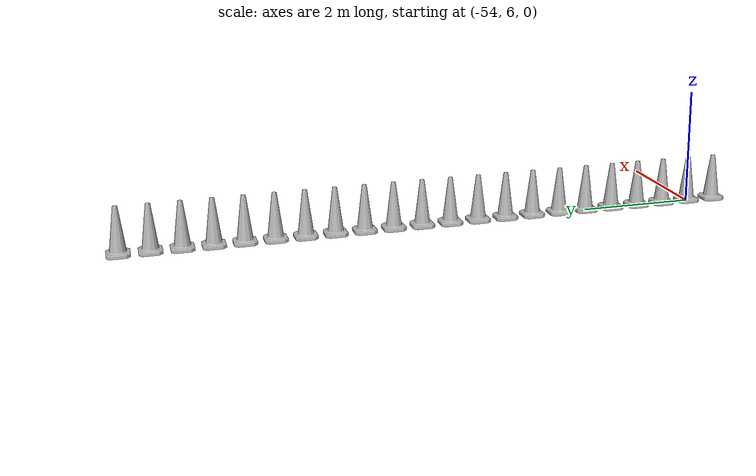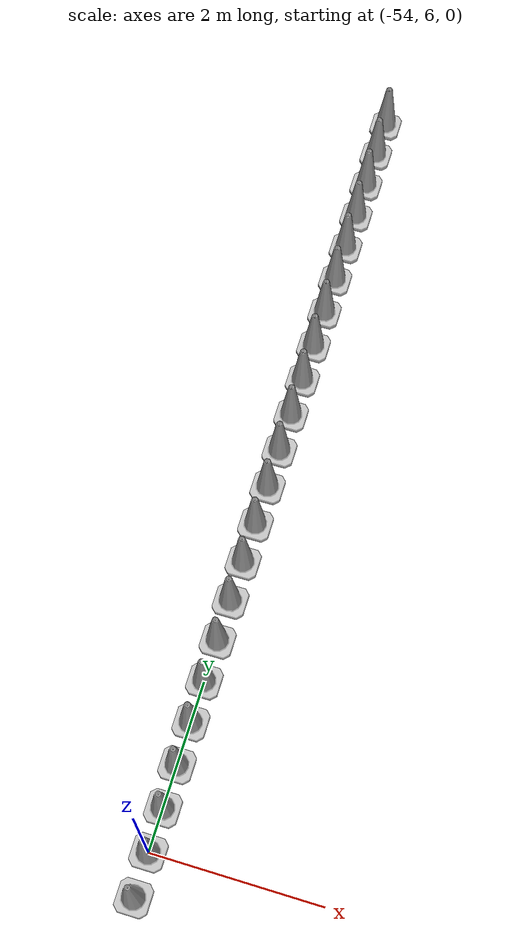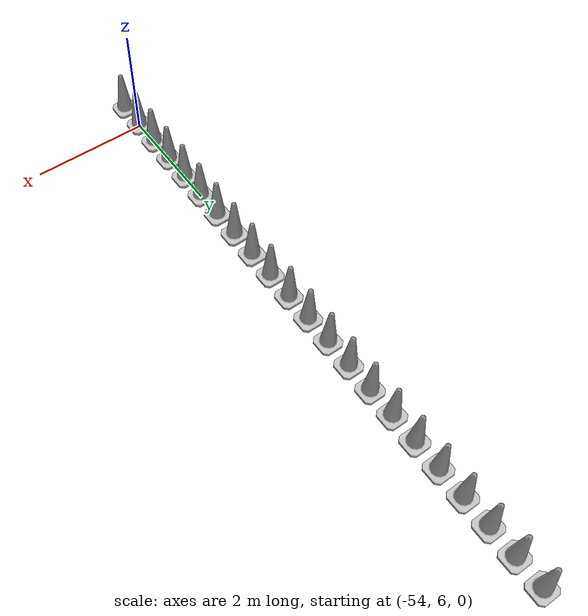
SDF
<sdf version="1.4">
 <world name="default">
  <include><uri>model://sun</uri></include>
  <model name="Construction Cone Parking Lot 00">
   <link name="link">
    <collision name="collision">
     <geometry>
      <mesh><scale>7.5 7.5 7.5</scale><uri>model://construction_cone/meshes/construction_cone.dae</uri></mesh>
     </geometry>
    </collision>
    <visual name="visual">
     <geometry>
      <mesh><scale>7.5 7.5 7.5</scale><uri>model://construction_cone/meshes/construction_cone.dae</uri></mesh>
     </geometry>
    </visual>
    <velocity_decay><linear>0</linear><angular>0</angular></velocity_decay>
    <inertial>
     <inertia><ixx>1</ixx><ixy>0</ixy><ixz>0</ixz><iyy>1</iyy><iyz>0</iyz><izz>1</izz></inertia>
     <mass>1</mass>
    </inertial>
   </link>
   <pose>-54 5.5 0 0 -0 0</pose>
   <static>0</static>
  </model>
  <model name="Construction Cone Parking Lot 01">
   <link name="link">
    <collision name="collision">
     <geometry>
      <mesh><scale>7.5 7.5 7.5</scale><uri>model://construction_cone/meshes/construction_cone.dae</uri></mesh>
     </geometry>
    </collision>
    <visual name="visual">
     <geometry>
      <mesh><scale>7.5 7.5 7.5</scale><uri>model://construction_cone/meshes/construction_cone.dae</uri></mesh>
     </geometry>
    </visual>
    <velocity_decay><linear>0</linear><angular>0</angular></velocity_decay>
    <inertial>
     <inertia><ixx>1</ixx><ixy>0</ixy><ixz>0</ixz><iyy>1</iyy><iyz>0</iyz><izz>1</izz></inertia>
     <mass>1</mass>
    </inertial>
   </link>
   <pose>-54 6 0 0 -0 0</pose>
   <static>0</static>
  </model>
  <model name="Construction Cone Parking Lot 02">
   <link name="link">
    <collision name="collision">
     <geometry>
      <mesh><scale>7.5 7.5 7.5</scale><uri>model://construction_cone/meshes/construction_cone.dae</uri></mesh>
     </geometry>
    </collision>
    <visual name="visual">
     <geometry>
      <mesh><scale>7.5 7.5 7.5</scale><uri>model://construction_cone/meshes/construction_cone.dae</uri></mesh>
     </geometry>
    </visual>
    <velocity_decay><linear>0</linear><angular>0</angular></velocity_decay>
    <inertial>
     <inertia><ixx>1</ixx><ixy>0</ixy><ixz>0</ixz><iyy>1</iyy><iyz>0</iyz><izz>1</izz></inertia>
     <mass>1</mass>
    </inertial>
   </link>
   <pose>-54 6.5 0 0 -0 0</pose>
   <static>0</static>
  </model>
  <model name="Construction Cone Parking Lot 03">
   <link name="link">
    <collision name="collision">
     <geometry>
      <mesh><scale>7.5 7.5 7.5</scale><uri>model://construction_cone/meshes/construction_cone.dae</uri></mesh>
     </geometry>
    </collision>
    <visual name="visual">
     <geometry>
      <mesh><scale>7.5 7.5 7.5</scale><uri>model://construction_cone/meshes/construction_cone.dae</uri></mesh>
     </geometry>
    </visual>
    <velocity_decay><linear>0</linear><angular>0</angular></velocity_decay>
    <inertial>
     <inertia><ixx>1</ixx><ixy>0</ixy><ixz>0</ixz><iyy>1</iyy><iyz>0</iyz><izz>1</izz></inertia>
     <mass>1</mass>
    </inertial>
   </link>
   <pose>-54 7 0 0 -0 0</pose>
   <static>0</static>
  </model>
  <model name="Construction Cone Parking Lot 04">
   <link name="link">
    <collision name="collision">
     <geometry>
      <mesh><scale>7.5 7.5 7.5</scale><uri>model://construction_cone/meshes/construction_cone.dae</uri></mesh>
     </geometry>
    </collision>
    <visual name="visual">
     <geometry>
      <mesh><scale>7.5 7.5 7.5</scale><uri>model://construction_cone/meshes/construction_cone.dae</uri></mesh>
     </geometry>
    </visual>
    <velocity_decay><linear>0</linear><angular>0</angular></velocity_decay>
    <inertial>
     <inertia><ixx>1</ixx><ixy>0</ixy><ixz>0</ixz><iyy>1</iyy><iyz>0</iyz><izz>1</izz></inertia>
     <mass>1</mass>
    </inertial>
   </link>
   <pose>-54 7.5 0 0 -0 0</pose>
   <static>0</static>
  </model>
  <model name="Construction Cone Parking Lot 05">
   <link name="link">
    <collision name="collision">
     <geometry>
      <mesh><scale>7.5 7.5 7.5</scale><uri>model://construction_cone/meshes/construction_cone.dae</uri></mesh>
     </geometry>
    </collision>
    <visual name="visual">
     <geometry>
      <mesh><scale>7.5 7.5 7.5</scale><uri>model://construction_cone/meshes/construction_cone.dae</uri></mesh>
     </geometry>
    </visual>
    <velocity_decay><linear>0</linear><angular>0</angular></velocity_decay>
    <inertial>
     <inertia><ixx>1</ixx><ixy>0</ixy><ixz>0</ixz><iyy>1</iyy><iyz>0</iyz><izz>1</izz></inertia>
     <mass>1</mass>
    </inertial>
   </link>
   <pose>-54 8 0 0 -0 0</pose>
   <static>0</static>
  </model>
  <model name="Construction Cone Parking Lot 06">
   <link name="link">
    <collision name="collision">
     <geometry>
      <mesh><scale>7.5 7.5 7.5</scale><uri>model://construction_cone/meshes/construction_cone.dae</uri></mesh>
     </geometry>
    </collision>
    <visual name="visual">
     <geometry>
      <mesh><scale>7.5 7.5 7.5</scale><uri>model://construction_cone/meshes/construction_cone.dae</uri></mesh>
     </geometry>
    </visual>
    <velocity_decay><linear>0</linear><angular>0</angular></velocity_decay>
    <inertial>
     <inertia><ixx>1</ixx><ixy>0</ixy><ixz>0</ixz><iyy>1</iyy><iyz>0</iyz><izz>1</izz></inertia>
     <mass>1</mass>
    </inertial>
   </link>
   <pose>-54 8.5 0 0 -0 0</pose>
   <static>0</static>
  </model>
  <model name="Construction Cone Parking Lot 07">
   <link name="link">
    <collision name="collision">
     <geometry>
      <mesh><scale>7.5 7.5 7.5</scale><uri>model://construction_cone/meshes/construction_cone.dae</uri></mesh>
     </geometry>
    </collision>
    <visual name="visual">
     <geometry>
      <mesh><scale>7.5 7.5 7.5</scale><uri>model://construction_cone/meshes/construction_cone.dae</uri></mesh>
     </geometry>
    </visual>
    <velocity_decay><linear>0</linear><angular>0</angular></velocity_decay>
    <inertial>
     <inertia><ixx>1</ixx><ixy>0</ixy><ixz>0</ixz><iyy>1</iyy><iyz>0</iyz><izz>1</izz></inertia>
     <mass>1</mass>
    </inertial>
   </link>
   <pose>-54 9 0 0 -0 0</pose>
   <static>0</static>
  </model>
  <model name="Construction Cone Parking Lot 08">
   <link name="link">
    <collision name="collision">
     <geometry>
      <mesh><scale>7.5 7.5 7.5</scale><uri>model://construction_cone/meshes/construction_cone.dae</uri></mesh>
     </geometry>
    </collision>
    <visual name="visual">
     <geometry>
      <mesh><scale>7.5 7.5 7.5</scale><uri>model://construction_cone/meshes/construction_cone.dae</uri></mesh>
     </geometry>
    </visual>
    <velocity_decay><linear>0</linear><angular>0</angular></velocity_decay>
    <inertial>
     <inertia><ixx>1</ixx><ixy>0</ixy><ixz>0</ixz><iyy>1</iyy><iyz>0</iyz><izz>1</izz></inertia>
     <mass>1</mass>
    </inertial>
   </link>
   <pose>-54 9.5 0 0 -0 0</pose>
   <static>0</static>
  </model>
  <model name="Construction Cone Parking Lot 09">
   <link name="link">
    <collision name="collision">
     <geometry>
      <mesh><scale>7.5 7.5 7.5</scale><uri>model://construction_cone/meshes/construction_cone.dae</uri></mesh>
     </geometry>
    </collision>
    <visual name="visual">
     <geometry>
      <mesh><scale>7.5 7.5 7.5</scale><uri>model://construction_cone/meshes/construction_cone.dae</uri></mesh>
     </geometry>
    </visual>
    <velocity_decay><linear>0</linear><angular>0</angular></velocity_decay>
    <inertial>
     <inertia><ixx>1</ixx><ixy>0</ixy><ixz>0</ixz><iyy>1</iyy><iyz>0</iyz><izz>1</izz></inertia>
     <mass>1</mass>
    </inertial>
   </link>
   <pose>-54 10 0 0 -0 0</pose>
   <static>0</static>
  </model>
  <model name="Construction Cone Parking Lot 10">
   <link name="link">
    <collision name="collision">
     <geometry>
      <mesh><scale>7.5 7.5 7.5</scale><uri>model://construction_cone/meshes/construction_cone.dae</uri></mesh>
     </geometry>
    </collision>
    <visual name="visual">
     <geometry>
      <mesh><scale>7.5 7.5 7.5</scale><uri>model://construction_cone/meshes/construction_cone.dae</uri></mesh>
     </geometry>
    </visual>
    <velocity_decay><linear>0</linear><angular>0</angular></velocity_decay>
    <inertial>
     <inertia><ixx>1</ixx><ixy>0</ixy><ixz>0</ixz><iyy>1</iyy><iyz>0</iyz><izz>1</izz></inertia>
     <mass>1</mass>
    </inertial>
   </link>
   <pose>-54 10.5 0 0 -0 0</pose>
   <static>0</static>
  </model>
  <model name="Construction Cone Parking Lot 11">
   <link name="link">
    <collision name="collision">
     <geometry>
      <mesh><scale>7.5 7.5 7.5</scale><uri>model://construction_cone/meshes/construction_cone.dae</uri></mesh>
     </geometry>
    </collision>
    <visual name="visual">
     <geometry>
      <mesh><scale>7.5 7.5 7.5</scale><uri>model://construction_cone/meshes/construction_cone.dae</uri></mesh>
     </geometry>
    </visual>
    <velocity_decay><linear>0</linear><angular>0</angular></velocity_decay>
    <inertial>
     <inertia><ixx>1</ixx><ixy>0</ixy><ixz>0</ixz><iyy>1</iyy><iyz>0</iyz><izz>1</izz></inertia>
     <mass>1</mass>
    </inertial>
   </link>
   <pose>-54 11 0 0 -0 0</pose>
   <static>0</static>
  </model>
  <model name="Construction Cone Parking Lot 12">
   <link name="link">
    <collision name="collision">
     <geometry>
      <mesh><scale>7.5 7.5 7.5</scale><uri>model://construction_cone/meshes/construction_cone.dae</uri></mesh>
     </geometry>
    </collision>
    <visual name="visual">
     <geometry>
      <mesh><scale>7.5 7.5 7.5</scale><uri>model://construction_cone/meshes/construction_cone.dae</uri></mesh>
     </geometry>
    </visual>
    <velocity_decay><linear>0</linear><angular>0</angular></velocity_decay>
    <inertial>
     <inertia><ixx>1</ixx><ixy>0</ixy><ixz>0</ixz><iyy>1</iyy><iyz>0</iyz><izz>1</izz></inertia>
     <mass>1</mass>
    </inertial>
   </link>
   <pose>-54 11.5 0 0 -0 0</pose>
   <static>0</static>
  </model>
  <model name="Construction Cone Parking Lot 13">
   <link name="link">
    <collision name="collision">
     <geometry>
      <mesh><scale>7.5 7.5 7.5</scale><uri>model://construction_cone/meshes/construction_cone.dae</uri></mesh>
     </geometry>
    </collision>
    <visual name="visual">
     <geometry>
      <mesh><scale>7.5 7.5 7.5</scale><uri>model://construction_cone/meshes/construction_cone.dae</uri></mesh>
     </geometry>
    </visual>
    <velocity_decay><linear>0</linear><angular>0</angular></velocity_decay>
    <inertial>
     <inertia><ixx>1</ixx><ixy>0</ixy><ixz>0</ixz><iyy>1</iyy><iyz>0</iyz><izz>1</izz></inertia>
     <mass>1</mass>
    </inertial>
   </link>
   <pose>-54 12 0 0 -0 0</pose>
   <static>0</static>
  </model>
  <model name="Construction Cone Parking Lot 14">
   <link name="link">
    <collision name="collision">
     <geometry>
      <mesh><scale>7.5 7.5 7.5</scale><uri>model://construction_cone/meshes/construction_cone.dae</uri></mesh>
     </geometry>
    </collision>
    <visual name="visual">
     <geometry>
      <mesh><scale>7.5 7.5 7.5</scale><uri>model://construction_cone/meshes/construction_cone.dae</uri></mesh>
     </geometry>
    </visual>
    <velocity_decay><linear>0</linear><angular>0</angular></velocity_decay>
    <inertial>
     <inertia><ixx>1</ixx><ixy>0</ixy><ixz>0</ixz><iyy>1</iyy><iyz>0</iyz><izz>1</izz></inertia>
     <mass>1</mass>
    </inertial>
   </link>
   <pose>-54 12.5 0 0 -0 0</pose>
   <static>0</static>
  </model>
  <model name="Construction Cone Parking Lot 15">
   <link name="link">
    <collision name="collision">
     <geometry>
      <mesh><scale>7.5 7.5 7.5</scale><uri>model://construction_cone/meshes/construction_cone.dae</uri></mesh>
     </geometry>
    </collision>
    <visual name="visual">
     <geometry>
      <mesh><scale>7.5 7.5 7.5</scale><uri>model://construction_cone/meshes/construction_cone.dae</uri></mesh>
     </geometry>
    </visual>
    <velocity_decay><linear>0</linear><angular>0</angular></velocity_decay>
    <inertial>
     <inertia><ixx>1</ixx><ixy>0</ixy><ixz>0</ixz><iyy>1</iyy><iyz>0</iyz><izz>1</izz></inertia>
     <mass>1</mass>
    </inertial>
   </link>
   <pose>-54 13 0 0 -0 0</pose>
   <static>0</static>
  </model>
  <model name="Construction Cone Parking Lot 16">
   <link name="link">
    <collision name="collision">
     <geometry>
      <mesh><scale>7.5 7.5 7.5</scale><uri>model://construction_cone/meshes/construction_cone.dae</uri></mesh>
     </geometry>
    </collision>
    <visual name="visual">
     <geometry>
      <mesh><scale>7.5 7.5 7.5</scale><uri>model://construction_cone/meshes/construction_cone.dae</uri></mesh>
     </geometry>
    </visual>
    <velocity_decay><linear>0</linear><angular>0</angular></velocity_decay>
    <inertial>
     <inertia><ixx>1</ixx><ixy>0</ixy><ixz>0</ixz><iyy>1</iyy><iyz>0</iyz><izz>1</izz></inertia>
     <mass>1</mass>
    </inertial>
   </link>
   <pose>-54 13.5 0 0 -0 0</pose>
   <static>0</static>
  </model>
  <model name="Construction Cone Parking Lot 17">
   <link name="link">
    <collision name="collision">
     <geometry>
      <mesh><scale>7.5 7.5 7.5</scale><uri>model://construction_cone/meshes/construction_cone.dae</uri></mesh>
     </geometry>
    </collision>
    <visual name="visual">
     <geometry>
      <mesh><scale>7.5 7.5 7.5</scale><uri>model://construction_cone/meshes/construction_cone.dae</uri></mesh>
     </geometry>
    </visual>
    <velocity_decay><linear>0</linear><angular>0</angular></velocity_decay>
    <inertial>
     <inertia><ixx>1</ixx><ixy>0</ixy><ixz>0</ixz><iyy>1</iyy><iyz>0</iyz><izz>1</izz></inertia>
     <mass>1</mass>
    </inertial>
   </link>
   <pose>-54 14 0 0 -0 0</pose>
   <static>0</static>
  </model>
  <model name="Construction Cone Parking Lot 18">
   <link name="link">
    <collision name="collision">
     <geometry>
      <mesh><scale>7.5 7.5 7.5</scale><uri>model://construction_cone/meshes/construction_cone.dae</uri></mesh>
     </geometry>
    </collision>
    <visual name="visual">
     <geometry>
      <mesh><scale>7.5 7.5 7.5</scale><uri>model://construction_cone/meshes/construction_cone.dae</uri></mesh>
     </geometry>
    </visual>
    <velocity_decay><linear>0</linear><angular>0</angular></velocity_decay>
    <inertial>
     <inertia><ixx>1</ixx><ixy>0</ixy><ixz>0</ixz><iyy>1</iyy><iyz>0</iyz><izz>1</izz></inertia>
     <mass>1</mass>
    </inertial>
   </link>
   <pose>-54 14.5 0 0 -0 0</pose>
   <static>0</static>
  </model>
  <model name="Construction Cone Parking Lot 19">
   <link name="link">
    <collision name="collision">
     <geometry>
      <mesh><scale>7.5 7.5 7.5</scale><uri>model://construction_cone/meshes/construction_cone.dae</uri></mesh>
     </geometry>
    </collision>
    <visual name="visual">
     <geometry>
      <mesh><scale>7.5 7.5 7.5</scale><uri>model://construction_cone/meshes/construction_cone.dae</uri></mesh>
     </geometry>
    </visual>
    <velocity_decay><linear>0</linear><angular>0</angular></velocity_decay>
    <inertial>
     <inertia><ixx>1</ixx><ixy>0</ixy><ixz>0</ixz><iyy>1</iyy><iyz>0</iyz><izz>1</izz></inertia>
     <mass>1</mass>
    </inertial>
   </link>
   <pose>-54 15 0 0 -0 0</pose>
   <static>0</static>
  </model>
  <model name="Construction Cone Parking Lot 20">
   <link name="link">
    <collision name="collision">
     <geometry>
      <mesh><scale>7.5 7.5 7.5</scale><uri>model://construction_cone/meshes/construction_cone.dae</uri></mesh>
     </geometry>
    </collision>
    <visual name="visual">
     <geometry>
      <mesh><scale>7.5 7.5 7.5</scale><uri>model://construction_cone/meshes/construction_cone.dae</uri></mesh>
     </geometry>
    </visual>
    <velocity_decay><linear>0</linear><angular>0</angular></velocity_decay>
    <inertial>
     <inertia><ixx>1</ixx><ixy>0</ixy><ixz>0</ixz><iyy>1</iyy><iyz>0</iyz><izz>1</izz></inertia>
     <mass>1</mass>
    </inertial>
   </link>
   <pose>-54 15.5 0 0 -0 0</pose>
   <static>0</static>
  </model>
  <model name="Construction Cone Parking Lot 21">
   <link name="link">
    <collision name="collision">
     <geometry>
      <mesh><scale>7.5 7.5 7.5</scale><uri>model://construction_cone/meshes/construction_cone.dae</uri></mesh>
     </geometry>
    </collision>
    <visual name="visual">
     <geometry>
      <mesh><scale>7.5 7.5 7.5</scale><uri>model://construction_cone/meshes/construction_cone.dae</uri></mesh>
     </geometry>
    </visual>
    <velocity_decay><linear>0</linear><angular>0</angular></velocity_decay>
    <inertial>
     <inertia><ixx>1</ixx><ixy>0</ixy><ixz>0</ixz><iyy>1</iyy><iyz>0</iyz><izz>1</izz></inertia>
     <mass>1</mass>
    </inertial>
   </link>
   <pose>-54 16 0 0 -0 0</pose>
   <static>0</static>
  </model>
 </world>
</sdf>
